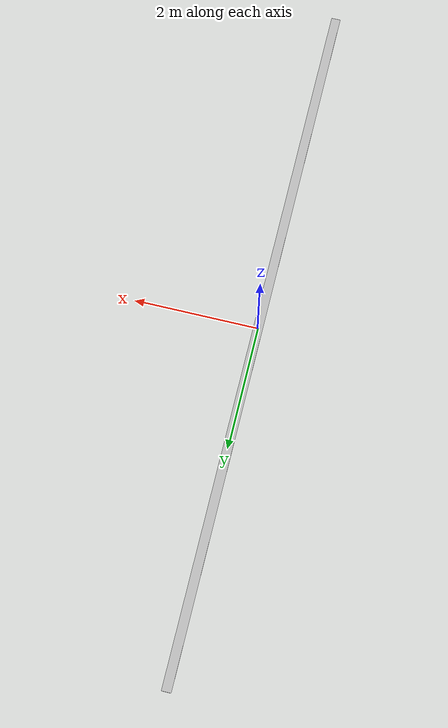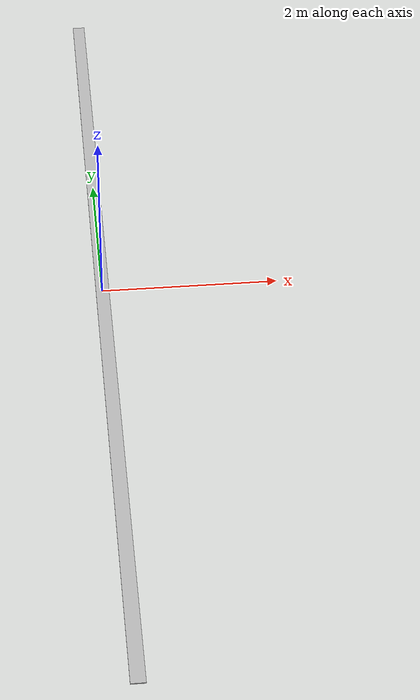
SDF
<?xml version="1.0" ?>
<sdf version="1.7">
  <model name="turuncu_cizgi">
    <static>true</static>
    <link name="link">
      <visual name="visual">
        <geometry><mesh><uri>file:///home/yigit/shell_ws/src/parkour_pkg/models/model_files/meshes/turuncu_cizgi.obj</uri></mesh></geometry>
      </visual>
      <collision name="collision">
        <geometry><box><size>0.149994 11.4 0.01</size></box></geometry>
      </collision>
    </link>
  </model>
</sdf>
